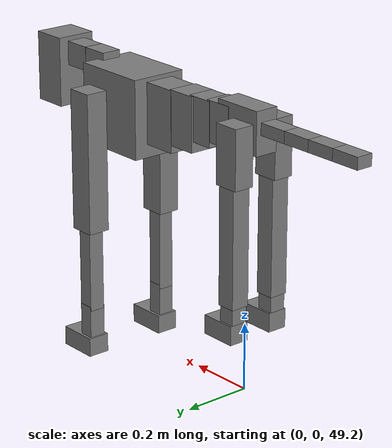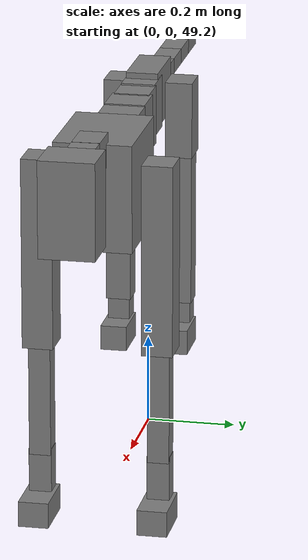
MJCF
<mujoco model="dog">

    <default>
        <joint armature="0.02" stiffness="1" damping="0.2" limited="true"/>
        <geom condim="3" friction="1 0.05 0.05" margin="0.01"/>
        <motor ctrllimited="true" ctrlrange="-1.0 1.0" forcelimited="true" gear="50"/>
    </default>

    <compiler inertiafromgeom="true" angle="radian"/>

    <option timestep="0.016" iterations="50" tolerance="1e-10" solver="Newton" jacobian="dense" cone="pyramidal"/>

    <size nconmax="20000" njmax="60000" nstack="5000000"/>
    <visual>
        <map force="0.1" zfar="30"/>
        <rgba haze="0.15 0.25 0.35 1"/>
        <quality shadowsize="2048"/>
        <global offwidth="800" offheight="800"/>
    </visual>

    <asset>
        <texture type="skybox" builtin="gradient" rgb1="0.3 0.5 0.7" rgb2="0 0 0" width="512" height="512"/>
        <texture name="texplane" type="2d" builtin="checker" rgb1=".2 .3 .4" rgb2=".1 0.15 0.2" width="512" height="512"
                 mark="cross" markrgb=".8 .8 .8"/>
        <texture name="texgeom" type="cube" builtin="flat" mark="cross" width="127" height="1278" rgb1="0.8 0.6 0.4"
                 rgb2="0.8 0.6 0.4" markrgb="1 1 1" random="0.01"/>

        <material name="matplane" reflectance="0.3" texture="texplane" texrepeat="1 1" texuniform="true"/>
        <material name="matgeom" texture="texgeom" texuniform="true" rgba="0.8 0.6 .4 1"/>
    </asset>

    <worldbody>
        <geom name="floor" pos="0 0 0" size="0 0 .25" type="plane" material="matplane" condim="3"/>

        <light directional="false" diffuse=".2 .2 .2" specular="0 0 0" pos="0 0 5" dir="0 0 -1" castshadow="false"/>
        <light mode="targetbodycom" target="torso" directional="false" diffuse=".8 .8 .8" specular="0.3 0.3 0.3"
               pos="0 0 4.0" dir="0 0 -1"/>

        <body name="root" pos="0 0 50">
            <freejoint name="root_1"/>
            <geom type="box" pos="0 0 -0.02" size="0.0774  0.0358  0.063" density="2030"/>

            <body name="spine1" pos="0.054 0 0">
                <joint name="spine1_y" axis="0 1 0" range="0 0.7" limited="true"/>
                <geom type="box" pos="0.02375 0 -0.03" size="0.04375  0.0375  0.05985" density="2030"/>

                <body name="spine2" pos="0.0612 0 0">
                    <joint name="spine2_y" axis="0 1 0" range="-0.15 0.15" limited="true"/>
                    <geom type="box" pos="0.03555  0  -0.04" size="0.04055  0.039  0.06615" density="2030"/>

                    <body name="spine3" pos="0.0730 0 0">
                        <joint name="spine3_y" axis="0 1 0" range="-0.15 0.15" limited="true"/>
                        <geom type="box" pos="0.03555  0  -0.057" size="0.04555  0.0445  0.081" density="2030"/>

                        <body name="spine4" pos="0.0780 0 0">
                            <joint name="spine4_y" axis="0 1 0" range="-0.15 0.15" limited="true"/>
                            <geom type="box" pos="0.05265  0  -0.07" size="0.05265  0.045  0.09135" density="2030"/>

                            <body name="torso" pos="0.1082 0 0">
                                <joint name="torso_y" axis="0 1 0" range="-0.15 0.15" limited="true"/>
                                <geom type="box" pos="0.11925  0  -0.085" size="0.11925  0.085  0.11745"
                                      density="2030"/>

                                <body name="neck1" pos="0.2160  0   0.0180">
                                    <joint name="neck1_y" axis="0 1 0" range="-1.2  -1" limited="true"/>
                                    <geom type="box" pos="0.0423  0  0" size="0.0423  0.03  0.036" density="2325"/>

                                    <body name="neck2" pos="0.0853  0  0">
                                        <joint name="neck2_y" axis="0 1 0" range="0.1  0" limited="true"/>
                                        <geom type="box" pos="0.0423  0  0" size="0.0423  0.03  0.036" density="2325"/>

                                        <body name="head" pos="0.0853  0  0">
                                            <joint name="head_y" axis="0 1 0" range="-0.3  -0.2" limited="true"/>
                                            <geom type="box" pos="0.0531  0  -0.055" size="0.0531  0.06  0.1044"
                                                  density="4030"/>

                                        </body>
                                    </body>
                                </body>

                                <body name="front_shoulder" pos="0.156  0   -0.0480">
                                    <joint name="front_shoulder_y" axis="0 1 0" range="-1 1.5" limited="true"/>
                                    <geom type="box" pos="0 0.13 -0.1841" size="0.0393  0.0336  0.2108" density="1158"/>
                                    <geom type="box" pos="0 -0.13 -0.1841" size="0.0393  0.0336  0.2108"
                                          density="1158"/>

                                    <body name="front_elbow" pos="0  0  -0.3683">
                                        <joint name="front_elbow_y" axis="0 1 0" range="-2 0" limited="true"/>
                                        <geom type="box" pos="0 0.13 -0.1372" size="0.0232  0.0237  0.1372"
                                              density="1081"/>
                                        <geom type="box" pos="0 -0.13 -0.1372" size="0.0232  0.0237  0.1372"
                                              density="1081"/>

                                        <body name="front_wrist" pos="0  0  -0.2743">
                                            <joint name="front_wrist_y" axis="0 1 0" range="-0.2 0" limited="true"/>
                                            <geom type="box" pos="0 0.13 -0.0497" size="0.0224  0.0248  0.0628"
                                                  density="1664"/>
                                            <geom type="box" pos="0 -0.13 -0.0497" size="0.0224  0.0248  0.0628"
                                                  density="1664"/>

                                            <body name="front_finger_end" pos="0  0  -0.0993">
                                                <joint name="front_finger_y" axis="0 1 0" range="-0.4 1"
                                                       limited="true"/>
                                                <geom type="box" pos="0.0331  0.13  -0.0134"
                                                      size="0.0606  0.0331  0.0284" density="1515"/>
                                                <geom type="box" pos="0.0331  -0.13  -0.0134"
                                                      size="0.0606  0.0331  0.0284" density="1515"/>

                                            </body>

                                        </body>
                                    </body>
                                </body>

                            </body>
                        </body>
                    </body>
                </body>
            </body>

            <body name="back_hip" pos="-0.03 0 -0.018">
                <joint name="back_hip_y" axis="0 1 0" range="-1.5 0.3" limited="true"/>
                <geom type="box" pos="0 0.07 -0.0638" size="0.0389  0.0305  0.0866" density="1154"/>
                <geom type="box" pos="0 -0.07 -0.0638" size="0.0389  0.0305  0.0866" density="1154"/>

                <body name="back_knee" pos="0  0  -0.1276">
                    <joint name="back_knee_y" axis="0 1 0" range="0 2.8" limited="true"/>
                    <geom type="box" pos="0 0.07 -0.1765" size="0.0282  0.0278  0.1920" density="1227"/>
                    <geom type="box" pos="0 -0.07 -0.1765" size="0.0282  0.0278  0.1920" density="1227"/>

                    <body name="back_ankle" pos="0  0  -0.3529">
                        <joint name="back_ankle_y" axis="0 1 0" range="-2.2 0" limited="true"/>
                        <geom type="box" pos="0 0.07 -0.0392" size="0.0247  0.0247  0.0505" density="1284"/>
                        <geom type="box" pos="0 -0.07 -0.0392" size="0.0247  0.0247  0.0505" density="1284"/>

                        <body name="back_toe_end" pos="0  0  -0.0784">
                            <joint name="back_toe_y" axis="0 1 0" range="-0.4 1" limited="true"/>
                            <geom type="box" pos="0.0298  0.07  -0.0132" size="0.0546  0.0298  0.0282" density="1515"/>
                            <geom type="box" pos="0.0298  -0.07  -0.0132" size="0.0546  0.0298  0.0282" density="1515"/>

                        </body>
                    </body>
                </body>
            </body>

            <body name="tail1" pos="-0.074 0 -0.006">
                <joint name="tail1_y" axis="0 1 0" range="-0.2 0.2" limited="true"/>
                <geom type="box" pos="-0.0536  0  0" size="0.045  0.025  0.0175" density="1587"/>

                <body name="tail2" pos="-0.09 0 0">
                    <joint name="tail2_y" axis="0 1 0" range="-0.2 0.2" limited="true"/>
                    <geom type="box" pos="-0.0536  0  0" size="0.045  0.025  0.0175" density="1587"/>

                    <body name="tail3" pos="-0.09 0 0">
                        <joint name="tail3_y" axis="0 1 0" range="-0.2 0.2" limited="true"/>
                        <geom type="box" pos="-0.0536  0  0" size="0.045  0.025  0.0175" density="1587"/>

                        <body name="tail4" pos="-0.09 0 0">
                            <joint name="tail4_y" axis="0 1 0" range="-0.2 0.2" limited="true"/>
                            <geom type="box" pos="-0.0536  0  0" size="0.045  0.025  0.0175" density="1587"/>

                        </body>
                    </body>
                </body>
            </body>
        </body>
    </worldbody>

    <actuator>
        <motor joint="spine1_y" forcerange="-150 150     "/>
        <motor joint="spine2_y" forcerange="-150 150     "/>
        <motor joint="spine3_y" forcerange="-150 150     "/>
        <motor joint="spine4_y" forcerange="-150 150     "/>
        <motor joint="torso_y" forcerange="-150 150     "/>
        <motor joint="neck1_y" forcerange="-100 100       "/>
        <motor joint="neck2_y" forcerange="-100 100       "/>
        <motor joint="head_y" forcerange="-150 150       "/>
        <motor joint="front_shoulder_y" forcerange="-194.13 129.78"/>
        <motor joint="front_elbow_y" forcerange="-106.18 166.04"/>
        <motor joint="front_wrist_y" forcerange="-61.81 136.89"/>
        <motor joint="front_finger_y" forcerange="-47.35 89.00"/>
        <motor joint="back_hip_y" forcerange="-263.80 343.33"/>
        <motor joint="back_knee_y" forcerange="-378.35 226.01"/>
        <motor joint="back_angle_y" forcerange="-214.95 80.84"/>
        <motor joint="back_toe_y" forcerange="-37.51 120.65"/>
        <motor joint="tail1_y" forcerange="-50 50     "/>
        <motor joint="tail2_y" forcerange="-50 50     "/>
        <motor joint="tail3_y" forcerange="-50 50     "/>
        <motor joint="tail4_y" forcerange="-50 50     "/>
    </actuator>
</mujoco>
